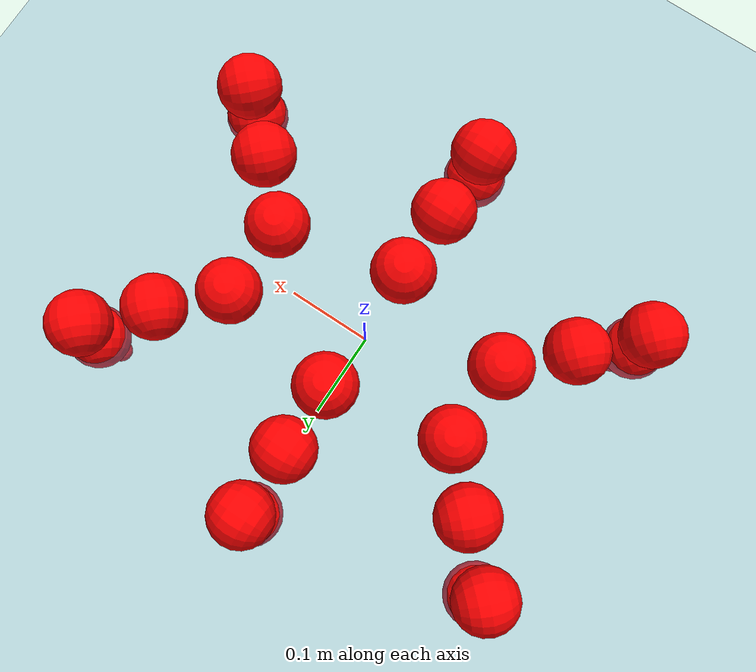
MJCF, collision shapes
<mujoco model="Golem">
  <compiler angle="radian" assetdir="assets" balanceinertia="true" inertiafromgeom="false"/>

  <option timestep="0.005" density="1.2" viscosity="2e-05"/>

  <size nkey="1"/>

  <visual>
    <quality shadowsize="8192"/>
    <map shadowclip="0.5"/>
  </visual>

  <default>
    <default class="/">
      <joint armature="0.01" damping="0.01" frictionloss="0.01"/>
      <geom contype="0" conaffinity="0" group="1" solref="-1000 -80"/>
      <site size="0.01 0.005 0.005" group="5"/>
      <general forcelimited="true" biastype="affine" gainprm="25" biasprm="0 -25 -0.5"/>
      <default class="visual">
        <geom type="mesh" group="2"/>
      </default>
      <default class="collision">
        <geom group="3"/>
      </default>
      <default class="foot">
        <geom size="0.01 0 0" condim="6" group="4" priority="1" solimp="0.015 1 0.01"/>
      </default>
      <default class="reward_collision_sphere">
        <geom group="5" rgba="1 0 0 1"/>
      </default>
    </default>
  </default>

  <asset>
    <texture type="skybox" colorspace="auto" name="//unnamed_texture_0" builtin="gradient" rgb1="0.95 0.95 0.95" rgb2="0.95 0.95 0.95" width="100" height="600"/>
    <texture type="2d" colorspace="auto" name="texplane" builtin="checker" rgb1="0.345 0.575 0.748" rgb2="0.345 0.575 0.748" markrgb="1 1 1" width="512" height="512"/>
    <material name="MatPlane" class="/" texture="texplane" texuniform="true" texrepeat="2 2" specular="0.9"/>
    <mesh name="body" class="/" file="body.stl" scale="0.001 0.001 0.001"/>
    <mesh name="coxa" class="/" file="coxa.stl" scale="0.001 0.001 0.001"/>
    <mesh name="femur" class="/" file="femur.stl" scale="0.001 0.001 0.001"/>
    <mesh name="tibia" class="/" file="tibia.stl" scale="0.001 0.001 0.001"/>
    <mesh name="tarsus" class="/" file="tarsus.stl" scale="0.001 0.001 0.001"/>
  </asset>

  <worldbody>
    <geom name="floor" class="/" size="100 100 0.125" type="plane" group="0" material="MatPlane"/>
    <light name="toplight_shadow" class="/" pos="0 0 5" dir="0.0990148 0.0990148 -0.990148" type="directional" ambient="0.04 0.04 0.04" diffuse="0.55 0.55 0.55" specular="0.12 0.12 0.12"/>
    <light name="toplight_fill" class="/" pos="0 0 5" dir="0.0990148 0.0990148 -0.990148" type="directional" castshadow="false" ambient="0.04 0.04 0.04" diffuse="0.3 0.3 0.3" specular="0.08 0.08 0.08"/>
    <body name="trunk" pos="0.000963496 2.95199e-05 -0.0013663" quat="1 7.60547e-06 -3.65133e-06 -7.88852e-06">
      <inertial pos="-0.000595044 -0.000394833 -0.00347146" quat="0.999999 -0.000845605 -0.000200313 0.00147567" mass="3.03364" diaginertia="0.00695826 0.00307209 0.0149203"/>
      <joint name="//unnamed_joint_0" type="free"/>
      <geom name="//unnamed_geom_1" class="/" pos="0 0 0.0694628" quat="1 0 0 0" type="mesh" rgba="0.9 0.9 0.9 1" mesh="body"/>
      <site name="imu" class="/" pos="0.121894 -0.00150873 0.107863" size="0.00936542"/>
      <camera name="track" class="/" pos="0 -1.58085 0" quat="0.707107 0.707107 0 0" mode="trackcom"/>
      <camera name="ego_camera" class="/" pos="0.1214 0 0.108536" quat="-0.5 -0.5 0.5 0.5"/>
      <body name="coxa_RR" pos="-0.167301 -0.066616 0.0688792" quat="0.382811 -7.17992e-05 9.06253e-05 -0.923827">
        <inertial pos="0.000160777 -0.00122031 0.000409416" quat="0.999998 0.000230048 0.000661498 0.00162853" mass="0.160749" diaginertia="0.00698381 0.00303968 0.0146399"/>
        <joint name="coxa_joint_RR" class="/" pos="0 0 0" axis="0.00430972 -0.0019335 -0.999989" range="-3.14119 3.15" armature="0.0098017" damping="0.0125132" frictionloss="0.0095899"/>
        <geom name="//unnamed_geom_2" class="/" type="mesh" rgba="0.2 0.2 0.2 1" mesh="coxa"/>
        <geom name="//unnamed_geom_3" class="reward_collision_sphere" size="0.0374617" pos="-0.0280153 0 0"/>
        <body name="femur_RR" pos="0.0567576 -0.000762496 0.000464156" quat="0.499949 -0.499749 0.500158 0.500145">
          <inertial pos="-0.000102427 -0.000931596 0.000981687" quat="1 0.000234213 -0.000444834 -0.000835891" mass="0.164142" diaginertia="0.00707103 0.00307857 0.0150329"/>
          <joint name="femur_joint_RR" class="/" pos="0 0 0" axis="0.00199688 0.000868306 -0.999998" stiffness="0.00267235" range="-3.1385 3.12085" armature="0.00963683" damping="0.00194418" frictionloss="0.00917362"/>
          <geom name="//unnamed_geom_4" class="/" type="mesh" rgba="0.9 0.9 0.9 1" mesh="femur"/>
          <geom name="//unnamed_geom_5" class="reward_collision_sphere" size="0.0374617"/>
          <body name="tibia_RR" pos="0.00108151 -0.0855467 0.000876049" quat="0.000119327 1 -3.32874e-05 -0.00046439">
            <inertial pos="-0.000318542 0.00085304 9.79461e-05" quat="1 7.89236e-05 3.80195e-05 -0.000902868" mass="0.164128" diaginertia="0.00706559 0.00306143 0.0148796"/>
            <joint name="tibia_joint_RR" class="/" pos="0 0 0" axis="0.00286973 0.00595046 0.999978" range="-3.16338 3.15537" armature="0.00948156" damping="0.00123907" frictionloss="0.00952059"/>
            <geom name="//unnamed_geom_6" class="/" type="mesh" rgba="0.2 0.2 0.2 1" mesh="tibia"/>
            <geom name="//unnamed_geom_7" class="reward_collision_sphere" size="0.0374617"/>
            <body name="tarsus_RR" pos="0.08108 0.00135172 0.000628589" quat="1 -1.31087e-05 -5.45294e-05 -8.22777e-06">
              <inertial pos="0.0561921 0.00121331 0.000300128" quat="0.500985 0.500305 0.496972 0.501726" mass="0.165328" diaginertia="0.007167 0.00306698 0.0151258"/>
              <joint name="tarsus_joint_RR" class="/" pos="0 0 0" axis="-2.90767e-05 0.000185417 1" range="-3.12831 3.14123" armature="0.00923053" damping="0.00834459" frictionloss="0.00936126"/>
              <geom name="//unnamed_geom_8" class="/" type="mesh" rgba="0.9 0.9 0.9 1" mesh="tarsus"/>
              <geom name="foot_1" class="foot" size="0.00943959" pos="0.10459 0 0" quat="0 -0.707107 0 0.707107"/>
              <geom name="//unnamed_geom_10" class="reward_collision_sphere" size="0.0374617"/>
              <geom name="//unnamed_geom_11" class="reward_collision_sphere" size="0.0140481" pos="0.100388 0 0"/>
              <site name="foot_1" class="foot" pos="0.10459 0 0" quat="0 -0.707107 0 0.707107" size="0.00936542"/>
            </body>
          </body>
        </body>
      </body>
      <body name="coxa_RM" pos="-0.000566889 -0.106138 0.0685339" quat="0.706956 -0.000717807 -0.000251071 -0.707257">
        <inertial pos="-0.000354557 -3.29822e-05 0.00126991" quat="0.999997 -0.00158918 0.00205908 2.19751e-05" mass="0.162934" diaginertia="0.00690676 0.00304485 0.0151628"/>
        <joint name="coxa_joint_RM" class="/" pos="0 0 0" axis="-0.000322662 -6.64545e-05 -1" range="-3.17126 3.13336" armature="0.00979315" damping="0.0137393" frictionloss="0.00940121"/>
        <geom name="//unnamed_geom_12" class="/" type="mesh" rgba="0.2 0.2 0.2 1" mesh="coxa"/>
        <geom name="//unnamed_geom_13" class="reward_collision_sphere" size="0.0374617" pos="-0.0280153 0 0"/>
        <body name="femur_RM" pos="0.0547276 -0.000596734 -0.00107264" quat="0.499757 -0.499941 0.500084 0.500218">
          <inertial pos="-0.000823375 0.000800046 -0.000763736" quat="0.999995 -0.00274288 0.00127719 0.000310316" mass="0.164217" diaginertia="0.00710149 0.00309079 0.0150499"/>
          <joint name="femur_joint_RM" class="/" pos="0 0 0" axis="-0.000272338 -0.000894127 -1" range="-3.13428 3.13491" armature="0.00953615" damping="0.0117119" frictionloss="0.00974863"/>
          <geom name="//unnamed_geom_14" class="/" type="mesh" rgba="0.9 0.9 0.9 1" mesh="femur"/>
          <geom name="//unnamed_geom_15" class="reward_collision_sphere" size="0.0374617"/>
          <body name="tibia_RM" pos="0.000636228 -0.0842771 0.000308078" quat="-5.40577e-05 1 0.000250168 -0.000133203">
            <inertial pos="0.000932193 0.00091251 -0.000316501" quat="0.999999 0.000813756 0.000415785 -0.000747979" mass="0.1668" diaginertia="0.00718722 0.00313881 0.0151296"/>
            <joint name="tibia_joint_RM" class="/" pos="0 0 0" axis="0.00388108 -0.000319381 0.999992" range="-3.14963 3.10152" armature="0.00899174" damping="0" frictionloss="0.00931064"/>
            <geom name="//unnamed_geom_16" class="/" type="mesh" rgba="0.2 0.2 0.2 1" mesh="tibia"/>
            <geom name="//unnamed_geom_17" class="reward_collision_sphere" size="0.0374617"/>
            <body name="tarsus_RM" pos="0.08073 -0.00129746 -0.000602616" quat="1 0.000121965 6.14633e-05 8.07646e-05">
              <inertial pos="0.055106 0.00173178 -0.000551666" quat="0.500477 0.500603 0.499337 0.499581" mass="0.161713" diaginertia="0.00711578 0.0031109 0.0153131"/>
              <joint name="tarsus_joint_RM" class="/" pos="0 0 0" axis="0.00196181 0.00511954 0.999985" range="-3.13474 3.13087" armature="0.0089604" damping="0.00477976" frictionloss="0.00941864"/>
              <geom name="//unnamed_geom_18" class="/" type="mesh" rgba="0.9 0.9 0.9 1" mesh="tarsus"/>
              <geom name="foot_2" class="foot" size="0.00912836" pos="0.10459 0 0" quat="0 -0.707107 0 0.707107"/>
              <geom name="//unnamed_geom_20" class="reward_collision_sphere" size="0.0374617"/>
              <geom name="//unnamed_geom_21" class="reward_collision_sphere" size="0.0140481" pos="0.100388 0 0"/>
              <site name="foot_2" class="foot" pos="0.10459 0 0" quat="0 -0.707107 0 0.707107" size="0.00936542"/>
            </body>
          </body>
        </body>
      </body>
      <body name="coxa_RF" pos="0.165594 -0.064662 0.0692923" quat="0.923819 0.000140913 -0.000115139 -0.38283">
        <inertial pos="-0.000620473 6.99078e-05 0.000600563" quat="0.99999 -0.00162151 2.90478e-05 -0.00414493" mass="0.167221" diaginertia="0.007327 0.0030826 0.0155207"/>
        <joint name="coxa_joint_RF" class="/" pos="0 0 0" axis="-0.00433275 -0.00494341 -0.999978" range="-3.12257 3.13929" armature="0.00934068" damping="0.00254653" frictionloss="0.00901741"/>
        <geom name="//unnamed_geom_22" class="/" type="mesh" rgba="0.2 0.2 0.2 1" mesh="coxa"/>
        <geom name="//unnamed_geom_23" class="reward_collision_sphere" size="0.0374617" pos="-0.0280153 0 0"/>
        <body name="femur_RF" pos="0.0563664 -0.000627268 0.000309012" quat="0.500173 -0.500047 0.499657 0.500123">
          <inertial pos="-0.000488889 0.000940629 0.000607091" quat="0.999997 -0.00157049 0.00110882 0.00154717" mass="0.159975" diaginertia="0.00705264 0.00303519 0.0149"/>
          <joint name="femur_joint_RF" class="/" pos="0 0 0" axis="2.87834e-05 2.84653e-05 -1" range="-3.15636 3.11553" armature="0.00857835" damping="0.0102403" frictionloss="0.00861664"/>
          <geom name="//unnamed_geom_24" class="/" type="mesh" rgba="0.9 0.9 0.9 1" mesh="femur"/>
          <geom name="//unnamed_geom_25" class="reward_collision_sphere" size="0.0374617"/>
          <body name="tibia_RF" pos="-0.000104393 -0.0841166 0.000882634" quat="8.76164e-05 1 -6.54594e-05 4.44233e-05">
            <inertial pos="-0.000981191 -0.000102323 -0.000164287" quat="1 0.000455249 -0.00039034 -3.29145e-05" mass="0.166309" diaginertia="0.00716153 0.00311186 0.0151822"/>
            <joint name="tibia_joint_RF" class="/" pos="0 0 0" axis="-0.00280178 2.52223e-05 0.999996" range="-3.15405 3.13706" armature="0.00942683" damping="0" frictionloss="0.00896558"/>
            <geom name="//unnamed_geom_26" class="/" type="mesh" rgba="0.2 0.2 0.2 1" mesh="tibia"/>
            <geom name="//unnamed_geom_27" class="reward_collision_sphere" size="0.0374617"/>
            <body name="tarsus_RF" pos="0.0810329 -0.000955024 -7.71098e-05" quat="1 0.000174924 7.02863e-05 0.000137401">
              <inertial pos="0.0553693 0.00107074 0.000176928" quat="0.500739 0.500453 0.493091 0.505637" mass="0.166869" diaginertia="0.00718827 0.00310591 0.0149738"/>
              <joint name="tarsus_joint_RF" class="/" pos="0 0 0" axis="0.0013286 -0.000898282 0.999999" range="-3.14018 3.13942" armature="0.00876265" damping="0.00631193" frictionloss="0.00913696"/>
              <geom name="//unnamed_geom_28" class="/" type="mesh" rgba="0.9 0.9 0.9 1" mesh="tarsus"/>
              <geom name="foot_3" class="foot" size="0.00954314" pos="0.10459 0 0" quat="0 -0.707107 0 0.707107"/>
              <geom name="//unnamed_geom_30" class="reward_collision_sphere" size="0.0374617"/>
              <geom name="//unnamed_geom_31" class="reward_collision_sphere" size="0.0140481" pos="0.100388 0 0"/>
              <site name="foot_3" class="foot" pos="0.10459 0 0" quat="0 -0.707107 0 0.707107" size="0.00936542"/>
            </body>
          </body>
        </body>
      </body>
      <body name="coxa_LR" pos="-0.164877 0.0686402 0.0697282" quat="0.382578 -0.000149729 -3.3315e-05 0.923923">
        <inertial pos="-0.000732466 -0.000119607 0.000418803" quat="0.99998 0.00594325 -0.000193869 0.00214001" mass="0.166716" diaginertia="0.00705873 0.00311266 0.0150422"/>
        <joint name="coxa_joint_LR" class="/" pos="0 0 0" axis="0.00301544 -0.00127908 -0.999995" range="-3.1349 3.11959" armature="0.00938865" damping="0.00865314" frictionloss="0.00904043"/>
        <geom name="//unnamed_geom_32" class="/" type="mesh" rgba="0.2 0.2 0.2 1" mesh="coxa"/>
        <geom name="//unnamed_geom_33" class="reward_collision_sphere" size="0.0374617" pos="-0.0280153 0 0"/>
        <body name="femur_LR" pos="0.0561021 -0.0020329 -3.16107e-05" quat="0.499926 -0.500072 0.500127 0.499875">
          <inertial pos="-0.000697922 -0.00133048 0.000931872" quat="1 0.000139594 -5.86446e-05 -3.68004e-05" mass="0.164514" diaginertia="0.00693252 0.00307737 0.014984"/>
          <joint name="femur_joint_LR" class="/" pos="0 0 0" axis="-0.000318539 0.00663476 0.999978" range="-3.13171 3.14197" armature="0.0102498" damping="0.00807405" frictionloss="0.00918041"/>
          <geom name="//unnamed_geom_34" class="/" type="mesh" rgba="0.9 0.9 0.9 1" mesh="femur"/>
          <geom name="//unnamed_geom_35" class="reward_collision_sphere" size="0.0374617"/>
          <body name="tibia_LR" pos="0.000143241 -0.0873982 -0.000826375" quat="4.65106e-05 1 9.84955e-05 -1.57306e-05">
            <inertial pos="-0.000777638 -0.000914564 0.000453774" quat="0.999988 0.00288235 0.00385542 0.000217865" mass="0.165217" diaginertia="0.00720495 0.00306357 0.0148694"/>
            <joint name="tibia_joint_LR" class="/" pos="0 0 0" axis="-0.000667211 0.00212523 -0.999998" range="-3.13788 3.12345" armature="0.0094193" damping="0" frictionloss="0.00915661"/>
            <geom name="//unnamed_geom_36" class="/" type="mesh" rgba="0.2 0.2 0.2 1" mesh="tibia"/>
            <geom name="//unnamed_geom_37" class="reward_collision_sphere" size="0.0374617"/>
            <body name="tarsus_LR" pos="0.0847139 0.000771042 0.0012384" quat="1 5.14518e-05 0.000179492 -0.00024384">
              <inertial pos="0.0583562 -0.000706204 0.000173062" quat="0.50078 0.499875 0.49954 0.499804" mass="0.166112" diaginertia="0.00709205 0.00306199 0.0151148"/>
              <joint name="tarsus_joint_LR" class="/" pos="0 0 0" axis="-0.00426056 0.00412301 -0.999982" range="-3.1391 3.13174" armature="0.00922145" damping="0.0271483" frictionloss="0.00948182"/>
              <geom name="//unnamed_geom_38" class="/" type="mesh" rgba="0.9 0.9 0.9 1" mesh="tarsus"/>
              <geom name="foot_4" class="foot" size="0.00931203" pos="0.10459 0 0" quat="0.707107 0 -0.707107 0"/>
              <geom name="//unnamed_geom_40" class="reward_collision_sphere" size="0.0374617"/>
              <geom name="//unnamed_geom_41" class="reward_collision_sphere" size="0.0140481" pos="0.100388 0 0"/>
              <site name="foot_4" class="foot" pos="0.10459 0 0" quat="0.707107 0 -0.707107 0" size="0.00936542"/>
            </body>
          </body>
        </body>
      </body>
      <body name="coxa_LM" pos="0.000802348 0.10363 0.0696688" quat="0.707303 -0.000480502 -1.01941e-05 0.70691">
        <inertial pos="-0.000331487 -0.000740169 -0.000515045" quat="0.999989 0.00249125 -0.00306873 0.00266756" mass="0.163318" diaginertia="0.00711913 0.00311952 0.0150042"/>
        <joint name="coxa_joint_LM" class="/" pos="0 0 0" axis="-0.00437009 0.00120916 -0.99999" range="-3.15866 3.1702" armature="0.00936368" damping="0.0101834" frictionloss="0.00937831"/>
        <geom name="//unnamed_geom_42" class="/" type="mesh" rgba="0.2 0.2 0.2 1" mesh="coxa"/>
        <geom name="//unnamed_geom_43" class="reward_collision_sphere" size="0.0374617" pos="-0.0280153 0 0"/>
        <body name="femur_LM" pos="0.0538877 0.0011024 -0.00126561" quat="0.500057 -0.500263 0.499952 0.499727">
          <inertial pos="-0.000297947 -0.000841225 0.000402949" quat="0.999999 0.000953445 0.000843573 0.000322912" mass="0.166904" diaginertia="0.00709415 0.0030921 0.0150903"/>
          <joint name="femur_joint_LM" class="/" pos="0 0 0" axis="-0.000981111 -0.00289274 0.999995" stiffness="0.00253487" range="-3.16071 3.11983" armature="0.00909496" damping="0" frictionloss="0.0091559"/>
          <geom name="//unnamed_geom_44" class="/" type="mesh" rgba="0.9 0.9 0.9 1" mesh="femur"/>
          <geom name="//unnamed_geom_45" class="reward_collision_sphere" size="0.0374617"/>
          <body name="tibia_LM" pos="-0.000354766 -0.0821201 0.00104233" quat="-0.000180343 1 -5.44607e-05 -0.000276779">
            <inertial pos="-0.000679935 -0.00108442 -0.000314062" quat="0.999993 0.00167679 -0.00337577 -0.000875461" mass="0.160766" diaginertia="0.00704012 0.00299404 0.0147559"/>
            <joint name="tibia_joint_LM" class="/" pos="0 0 0" axis="-0.0026939 0.0029591 -0.999992" range="-3.13535 3.14072" armature="0.00897725" damping="0" frictionloss="0.00951706"/>
            <geom name="//unnamed_geom_46" class="/" type="mesh" rgba="0.2 0.2 0.2 1" mesh="tibia"/>
            <geom name="//unnamed_geom_47" class="reward_collision_sphere" size="0.0374617"/>
            <body name="tarsus_LM" pos="0.0824691 -0.000300726 -0.000378806" quat="1 9.12894e-05 -0.000136565 3.4133e-05">
              <inertial pos="0.0564265 -0.000225064 0.000180748" quat="0.503592 0.499975 0.499679 0.49673" mass="0.166337" diaginertia="0.00697108 0.00309317 0.0150401"/>
              <joint name="tarsus_joint_LM" class="/" pos="0 0 0" axis="0.000515823 -0.000424021 -1" range="-3.12602 3.1315" armature="0.00920485" damping="0" frictionloss="0.00935156"/>
              <geom name="//unnamed_geom_48" class="/" type="mesh" rgba="0.9 0.9 0.9 1" mesh="tarsus"/>
              <geom name="foot_5" class="foot" size="0.00884949" pos="0.10459 0 0" quat="0.707107 0 -0.707107 0"/>
              <geom name="//unnamed_geom_50" class="reward_collision_sphere" size="0.0374617"/>
              <geom name="//unnamed_geom_51" class="reward_collision_sphere" size="0.0140481" pos="0.100388 0 0"/>
              <site name="foot_5" class="foot" pos="0.10459 0 0" quat="0.707107 0 -0.707107 0" size="0.00936542"/>
            </body>
          </body>
        </body>
      </body>
      <body name="coxa_LF" pos="0.16747 0.066646 0.0692898" quat="0.923915 0.00017002 -0.000559173 0.382596">
        <inertial pos="-7.85624e-05 0.000278871 0.00038714" quat="0.999999 0.000814067 0.000741599 -0.000143043" mass="0.16644" diaginertia="0.00711918 0.0030457 0.0152589"/>
        <joint name="coxa_joint_LF" class="/" pos="0 0 0" axis="0.0033858 0.00361935 -0.999988" range="-3.13144 3.148" armature="0.00958192" damping="0" frictionloss="0.00923455"/>
        <geom name="//unnamed_geom_52" class="/" type="mesh" rgba="0.2 0.2 0.2 1" mesh="coxa"/>
        <geom name="//unnamed_geom_53" class="reward_collision_sphere" size="0.0374617" pos="-0.0280153 0 0"/>
        <body name="femur_LF" pos="0.0557926 0.0010533 -0.000121273" quat="0.499833 -0.49984 0.500326 0.500001">
          <inertial pos="4.53413e-05 -0.00035817 0.000978723" quat="0.999997 -0.00143513 0.000227913 -0.00174806" mass="0.168046" diaginertia="0.00709726 0.00308672 0.0150244"/>
          <joint name="femur_joint_LF" class="/" pos="0 0 0" axis="-0.000374719 -5.07064e-05 1" range="-3.12891 3.14094" armature="0.00930913" damping="0" frictionloss="0.00967798"/>
          <geom name="//unnamed_geom_54" class="/" type="mesh" rgba="0.9 0.9 0.9 1" mesh="femur"/>
          <geom name="//unnamed_geom_55" class="reward_collision_sphere" size="0.0374617"/>
          <body name="tibia_LF" pos="0.000193271 -0.083918 0.00122451" quat="-9.07784e-05 1 0.000501325 -0.000386605">
            <inertial pos="0.000157085 0.00103624 -0.000901377" quat="0.999982 -0.003817 -0.0042942 -0.00182176" mass="0.164646" diaginertia="0.0070743 0.00309956 0.0150872"/>
            <joint name="tibia_joint_LF" class="/" pos="0 0 0" axis="-0.000316363 -0.00142163 -0.999999" range="-3.10392 3.11996" armature="0.00919697" damping="0.00605091" frictionloss="0.00938129"/>
            <geom name="//unnamed_geom_56" class="/" type="mesh" rgba="0.2 0.2 0.2 1" mesh="tibia"/>
            <geom name="//unnamed_geom_57" class="reward_collision_sphere" size="0.0374617"/>
            <body name="tarsus_LF" pos="0.0829089 0.000773062 -5.55974e-05" quat="1 -0.000192308 0.000443829 -0.000114092">
              <inertial pos="0.0549809 0.000706483 -0.000298813" quat="0.499893 0.49996 0.499882 0.500265" mass="0.166391" diaginertia="0.00719712 0.00312302 0.0153507"/>
              <joint name="tarsus_joint_LF" class="/" pos="0 0 0" axis="-0.00411838 0.000978145 -0.999991" range="-3.14339 3.13354" armature="0.00974085" damping="0.0158114" frictionloss="0.0101505"/>
              <geom name="//unnamed_geom_58" class="/" type="mesh" rgba="0.9 0.9 0.9 1" mesh="tarsus"/>
              <geom name="foot_6" class="foot" size="0.0092288" pos="0.10459 0 0" quat="0.707107 0 -0.707107 0"/>
              <geom name="//unnamed_geom_60" class="reward_collision_sphere" size="0.0374617"/>
              <geom name="//unnamed_geom_61" class="reward_collision_sphere" size="0.0140481" pos="0.100388 0 0"/>
              <site name="foot_6" class="foot" pos="0.10459 0 0" quat="0.707107 0 -0.707107 0" size="0.00936542"/>
            </body>
          </body>
        </body>
      </body>
    </body>
  </worldbody>

  <contact>
    <pair class="/" geom1="floor" geom2="foot_1" name="//unnamed_contact_0"/>
    <pair class="/" geom1="floor" geom2="foot_2" name="//unnamed_contact_1"/>
    <pair class="/" geom1="floor" geom2="foot_3" name="//unnamed_contact_2"/>
    <pair class="/" geom1="floor" geom2="foot_4" name="//unnamed_contact_3"/>
    <pair class="/" geom1="floor" geom2="foot_5" name="//unnamed_contact_4"/>
    <pair class="/" geom1="floor" geom2="foot_6" name="//unnamed_contact_5"/>
  </contact>

  <actuator>
    <general name="coxa_joint_RR" class="/" joint="coxa_joint_RR" forcerange="-6.65339 6.65339" gainprm="22.8819" biasprm="0 -22.8819 -0.490351"/>
    <general name="femur_joint_RR" class="/" joint="femur_joint_RR" forcerange="-6.78169 6.78169" gainprm="22.8819" biasprm="0 -22.8819 -0.490351"/>
    <general name="tibia_joint_RR" class="/" joint="tibia_joint_RR" forcerange="-6.85319 6.85319" gainprm="22.8819" biasprm="0 -22.8819 -0.490351"/>
    <general name="tarsus_joint_RR" class="/" joint="tarsus_joint_RR" forcerange="-6.76912 6.76912" gainprm="22.8819" biasprm="0 -22.8819 -0.490351"/>
    <general name="coxa_joint_RM" class="/" joint="coxa_joint_RM" forcerange="-6.5724 6.5724" gainprm="22.8819" biasprm="0 -22.8819 -0.490351"/>
    <general name="femur_joint_RM" class="/" joint="femur_joint_RM" forcerange="-6.95047 6.95047" gainprm="22.8819" biasprm="0 -22.8819 -0.490351"/>
    <general name="tibia_joint_RM" class="/" joint="tibia_joint_RM" forcerange="-6.85135 6.85135" gainprm="22.8819" biasprm="0 -22.8819 -0.490351"/>
    <general name="tarsus_joint_RM" class="/" joint="tarsus_joint_RM" forcerange="-6.88333 6.88333" gainprm="22.8819" biasprm="0 -22.8819 -0.490351"/>
    <general name="coxa_joint_RF" class="/" joint="coxa_joint_RF" forcerange="-6.91724 6.91724" gainprm="22.8819" biasprm="0 -22.8819 -0.490351"/>
    <general name="femur_joint_RF" class="/" joint="femur_joint_RF" forcerange="-7.28791 7.28791" gainprm="22.8819" biasprm="0 -22.8819 -0.490351"/>
    <general name="tibia_joint_RF" class="/" joint="tibia_joint_RF" forcerange="-7.13442 7.13442" gainprm="22.8819" biasprm="0 -22.8819 -0.490351"/>
    <general name="tarsus_joint_RF" class="/" joint="tarsus_joint_RF" forcerange="-7.04898 7.04898" gainprm="22.8819" biasprm="0 -22.8819 -0.490351"/>
    <general name="coxa_joint_LR" class="/" joint="coxa_joint_LR" forcerange="-6.79855 6.79855" gainprm="22.8819" biasprm="0 -22.8819 -0.490351"/>
    <general name="femur_joint_LR" class="/" joint="femur_joint_LR" forcerange="-6.80789 6.80789" gainprm="22.8819" biasprm="0 -22.8819 -0.490351"/>
    <general name="tibia_joint_LR" class="/" joint="tibia_joint_LR" forcerange="-7.25554 7.25554" gainprm="22.8819" biasprm="0 -22.8819 -0.490351"/>
    <general name="tarsus_joint_LR" class="/" joint="tarsus_joint_LR" forcerange="-7.13195 7.13195" gainprm="22.8819" biasprm="0 -22.8819 -0.490351"/>
    <general name="coxa_joint_LM" class="/" joint="coxa_joint_LM" forcerange="-6.80304 6.80304" gainprm="22.8819" biasprm="0 -22.8819 -0.490351"/>
    <general name="femur_joint_LM" class="/" joint="femur_joint_LM" forcerange="-6.7268 6.7268" gainprm="22.8819" biasprm="0 -22.8819 -0.490351"/>
    <general name="tibia_joint_LM" class="/" joint="tibia_joint_LM" forcerange="-6.82967 6.82967" gainprm="22.8819" biasprm="0 -22.8819 -0.490351"/>
    <general name="tarsus_joint_LM" class="/" joint="tarsus_joint_LM" forcerange="-7.05684 7.05684" gainprm="22.8819" biasprm="0 -22.8819 -0.490351"/>
    <general name="coxa_joint_LF" class="/" joint="coxa_joint_LF" forcerange="-6.83117 6.83117" gainprm="22.8819" biasprm="0 -22.8819 -0.490351"/>
    <general name="femur_joint_LF" class="/" joint="femur_joint_LF" forcerange="-7.01665 7.01665" gainprm="22.8819" biasprm="0 -22.8819 -0.490351"/>
    <general name="tibia_joint_LF" class="/" joint="tibia_joint_LF" forcerange="-6.93263 6.93263" gainprm="22.8819" biasprm="0 -22.8819 -0.490351"/>
    <general name="tarsus_joint_LF" class="/" joint="tarsus_joint_LF" forcerange="-6.93158 6.93158" gainprm="22.8819" biasprm="0 -22.8819 -0.490351"/>
  </actuator>

  <sensor>
    <gyro site="imu" name="imu_angular_velocity"/>
    <velocimeter site="imu" name="imu_linear_velocity"/>
    <framelinvel objtype="site" objname="foot_1" name="foot_1_global_linear_velocity"/>
    <framelinvel objtype="site" objname="foot_2" name="foot_2_global_linear_velocity"/>
    <framelinvel objtype="site" objname="foot_3" name="foot_3_global_linear_velocity"/>
    <framelinvel objtype="site" objname="foot_4" name="foot_4_global_linear_velocity"/>
    <framelinvel objtype="site" objname="foot_5" name="foot_5_global_linear_velocity"/>
    <framelinvel objtype="site" objname="foot_6" name="foot_6_global_linear_velocity"/>
  </sensor>

  <keyframe>
    <key name="home" qpos="0 0 0.1457 1 0 0 0 0 0 0 0 0 0 0 0 0 0 0 0 0 0 0 0 0 0 0 0 0 0 0 0"/>
  </keyframe>
</mujoco>
